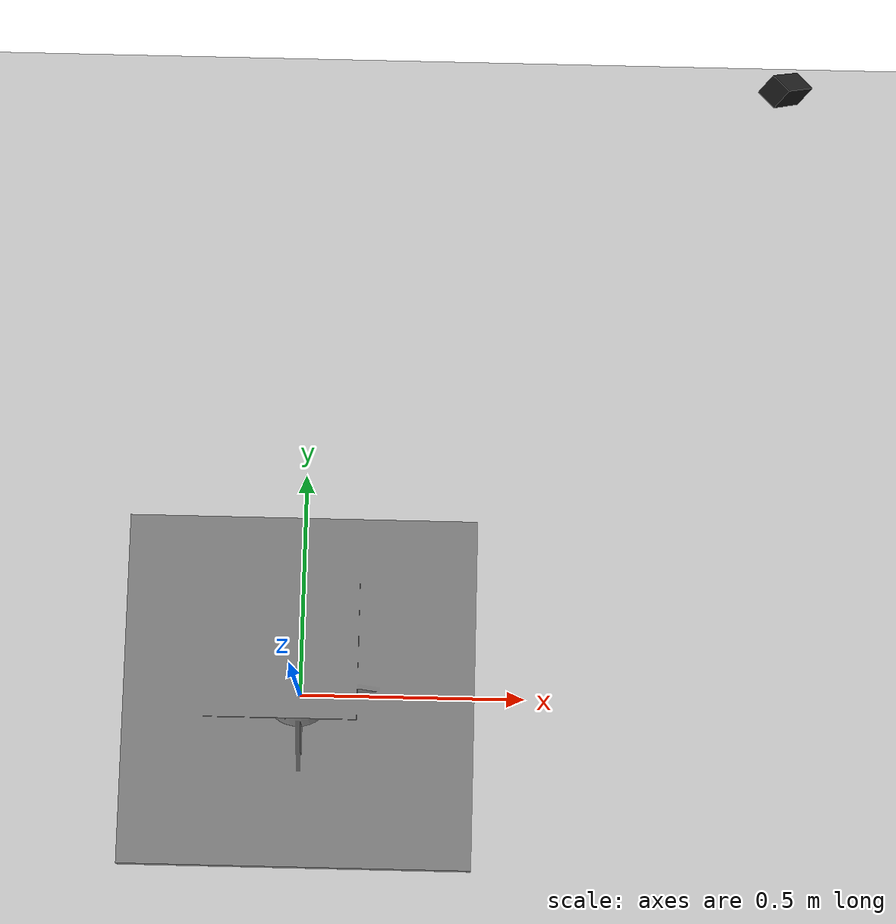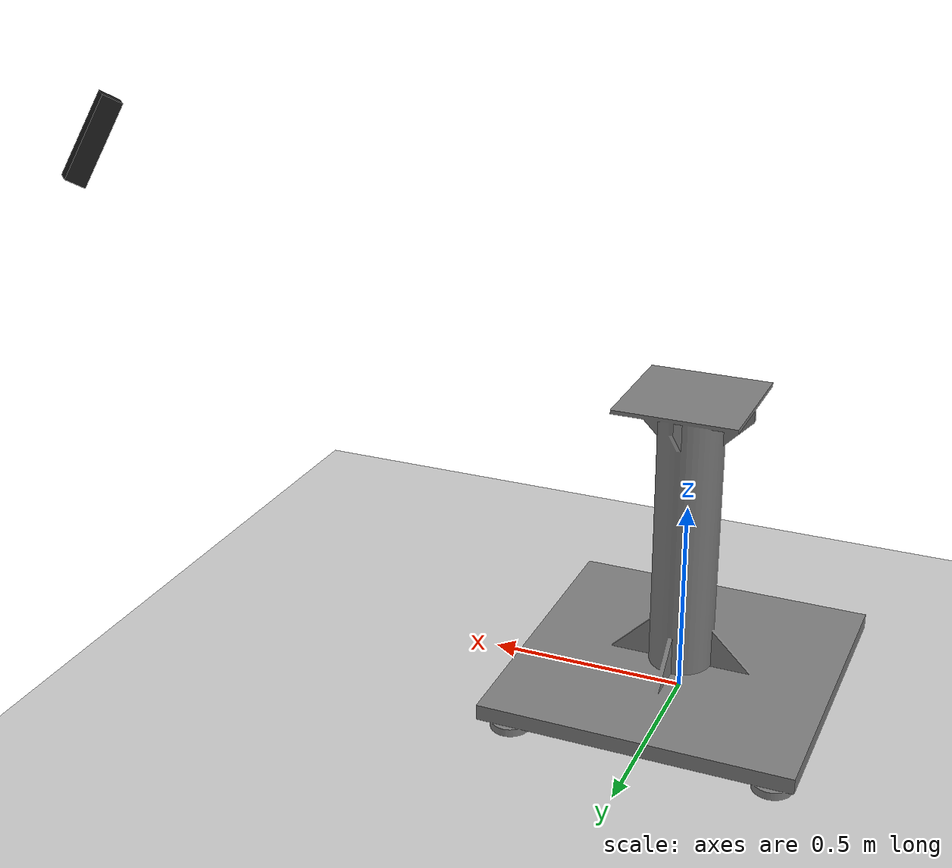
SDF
<?xml version="1.0" ?>
<sdf version="1.8">
  <world name="jaka_inspection_world">

    <!-- Physics — ODE max_contacts limits contact points per pair,
         suppresses "Trimesh-trimesh hash table bucket overflow" warning -->
    <physics name="1ms" type="ignored">
      <max_step_size>0.001</max_step_size>
      <real_time_factor>1.0</real_time_factor>
      <ode>
        <solver>
          <type>quick</type>
        </solver>
        <constraints>
          <contact_max_correcting_vel>100</contact_max_correcting_vel>
          <contact_surface_layer>0.001</contact_surface_layer>
        </constraints>
      </ode>
      <max_contacts>4</max_contacts>
    </physics>

    <!-- Plugins -->
    <plugin filename="libignition-gazebo-physics-system.so"
            name="ignition::gazebo::systems::Physics"/>
    <plugin filename="libignition-gazebo-user-commands-system.so"
            name="ignition::gazebo::systems::UserCommands"/>
    <plugin filename="libignition-gazebo-scene-broadcaster-system.so"
            name="ignition::gazebo::systems::SceneBroadcaster"/>
    <plugin filename="libignition-gazebo-sensors-system.so"
            name="ignition::gazebo::systems::Sensors">
      <render_engine>ogre2</render_engine>
    </plugin>
    <plugin filename="libignition-gazebo-contact-system.so"
            name="ignition::gazebo::systems::Contact"/>

    <!-- Lighting -->
    <light type="directional" name="sun">
      <cast_shadows>true</cast_shadows>
      <pose>0 0 10 0 0 0</pose>
      <diffuse>0.8 0.8 0.8 1</diffuse>
      <specular>0.2 0.2 0.2 1</specular>
      <attenuation>
        <range>1000</range>
        <constant>0.9</constant>
        <linear>0.01</linear>
        <quadratic>0.001</quadratic>
      </attenuation>
      <direction>-0.5 0.1 -0.9</direction>
    </light>

    <!-- Ground Plane -->
    <model name="ground_plane">
      <static>true</static>
      <link name="link">
        <collision name="collision">
          <geometry>
            <plane>
              <normal>0 0 1</normal>
              <size>100 100</size>
            </plane>
          </geometry>
        </collision>
        <visual name="visual">
          <geometry>
            <plane>
              <normal>0 0 1</normal>
              <size>100 100</size>
            </plane>
          </geometry>
          <material>
            <ambient>0.8 0.8 0.8 1</ambient>
            <diffuse>0.8 0.8 0.8 1</diffuse>
            <specular>0.8 0.8 0.8 1</specular>
          </material>
        </visual>
      </link>
    </model>

    <!-- Robot Stand (775x775x790 mm CAD → scale 0.001 → 0.775x0.775x0.79 m) -->
    <model name="robot_stand">
      <static>true</static>
      <pose>-0.3875 0.3875 0.790 3.14159 0 0</pose>
      <link name="stand_link">
        <collision name="collision">
          <geometry>
            <mesh>
              <uri>file:///home/julie/Music/Julie-inspection/src/jaka_visual_inspection/meshes/robot_stand.stl</uri>
              <scale>0.001 0.001 0.001</scale>
            </mesh>
          </geometry>
        </collision>
        <!-- Full STL visual kept unchanged -->
        <visual name="visual">
          <geometry>
            <mesh>
              <uri>file:///home/julie/Music/Julie-inspection/src/jaka_visual_inspection/meshes/robot_stand.stl</uri>
              <scale>0.001 0.001 0.001</scale>
            </mesh>
          </geometry>
          <material>
            <ambient>0.4 0.4 0.4 1</ambient>
            <diffuse>0.5 0.5 0.5 1</diffuse>
            <specular>0.3 0.3 0.3 1</specular>
          </material>
        </visual>
      </link>
    </model>

    <!-- ZED 2i camera body only — 170x40x40mm at X=0.90 Y=0.90 Z=1.50m
         Tilted 60° down, facing the robot workspace from the corner. -->
    <model name="zed2i_mount">
      <static>true</static>
      <pose>0.90 0.90 1.50 0 -1.047 -2.356</pose>
      <link name="camera_body">
        <visual name="camera_visual">
          <geometry>
            <box>
              <size>0.17 0.04 0.04</size>
            </box>
          </geometry>
          <material>
            <ambient>0.08 0.08 0.08 1</ambient>
            <diffuse>0.12 0.12 0.12 1</diffuse>
            <specular>0.5 0.5 0.5 1</specular>
          </material>
        </visual>
      </link>
    </model>

  </world>
</sdf>
